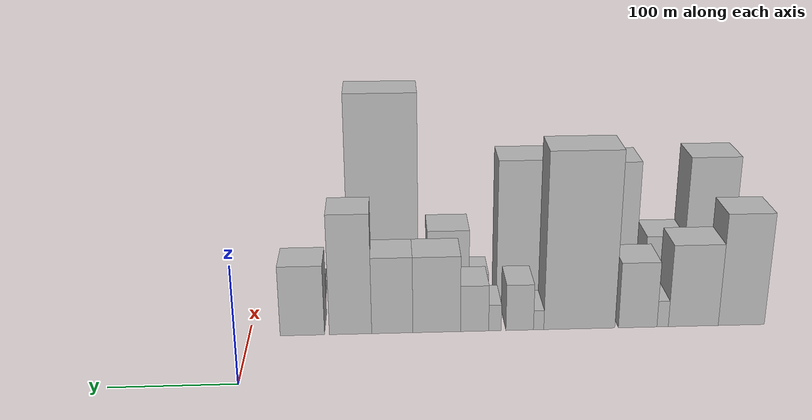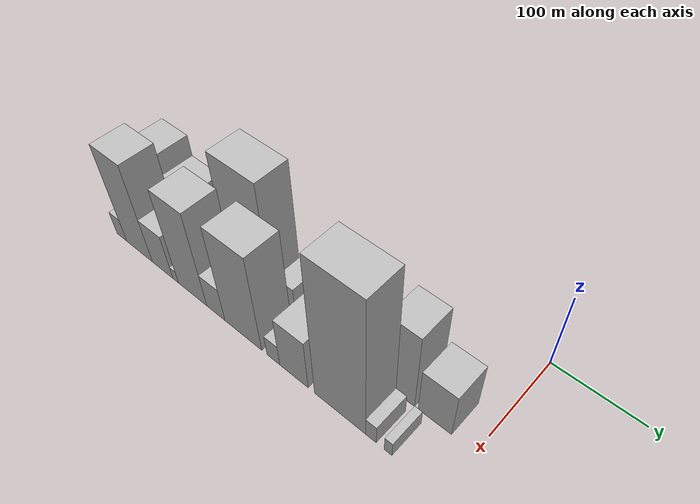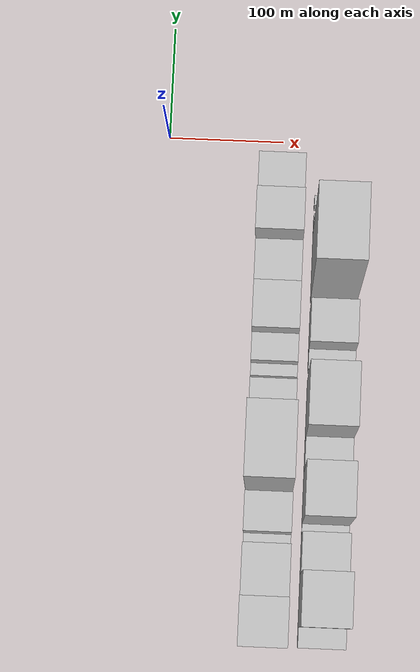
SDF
<sdf version="1.6">
 <world name="default">
  <model name="building_1">
   <static>1</static>
   <pose>100.0000 -417.9932 0 0.000000 0.000000 0.000000</pose>
   <link name="link">
    <pose>0 0 51.00 0 0 0</pose>
    <collision name="collision"><geometry><box><size>40.0000 40.0137 102.0000</size></box></geometry></collision>
    <visual name="visual">
     <cast_shadows>0</cast_shadows>
     <geometry><box><size>40.0000 40.0137 102.0000</size></box></geometry>
     <material>
      <script>
       <uri>model://HANNAS_wall/materials/scripts</uri>
       <uri>model://HANNAS_wall/materials/textures</uri>
       <name>vrc/HANNAS_wall</name>
      </script>
     </material>
    </visual>
   </link>
  </model>
  <model name="building_2">
   <static>1</static>
   <pose>100.0000 -376.3989 0 0.000000 0.000000 0.000000</pose>
   <link name="link">
    <pose>0 0 37.50 0 0 0</pose>
    <collision name="collision"><geometry><box><size>40.0000 43.1749 75.0000</size></box></geometry></collision>
    <visual name="visual">
     <cast_shadows>0</cast_shadows>
     <geometry><box><size>40.0000 43.1749 75.0000</size></box></geometry>
     <material>
      <script>
       <uri>model://HANNAS_wall/materials/scripts</uri>
       <uri>model://HANNAS_wall/materials/textures</uri>
       <name>vrc/HANNAS_wall</name>
      </script>
     </material>
    </visual>
   </link>
  </model>
  <model name="building_3">
   <static>1</static>
   <pose>100.0000 -349.9161 0 0.000000 0.000000 0.000000</pose>
   <link name="link">
    <pose>0 0 12.00 0 0 0</pose>
    <collision name="collision"><geometry><box><size>40.0000 9.7908 24.0000</size></box></geometry></collision>
    <visual name="visual">
     <cast_shadows>0</cast_shadows>
     <geometry><box><size>40.0000 9.7908 24.0000</size></box></geometry>
     <material>
      <script>
       <uri>model://HANNAS_wall/materials/scripts</uri>
       <uri>model://HANNAS_wall/materials/textures</uri>
       <name>vrc/HANNAS_wall</name>
      </script>
     </material>
    </visual>
   </link>
  </model>
  <model name="building_4">
   <static>1</static>
   <pose>100.0000 -328.4559 0 0.000000 0.000000 0.000000</pose>
   <link name="link">
    <pose>0 0 30.00 0 0 0</pose>
    <collision name="collision"><geometry><box><size>40.0000 33.1295 60.0000</size></box></geometry></collision>
    <visual name="visual">
     <cast_shadows>0</cast_shadows>
     <geometry><box><size>40.0000 33.1295 60.0000</size></box></geometry>
     <material>
      <script>
       <uri>model://HANNAS_wall/materials/scripts</uri>
       <uri>model://HANNAS_wall/materials/textures</uri>
       <name>vrc/HANNAS_wall</name>
      </script>
     </material>
    </visual>
   </link>
  </model>
  <model name="building_5">
   <static>1</static>
   <pose>100.0000 -278.4447 0 0.000000 0.000000 0.000000</pose>
   <link name="link">
    <pose>0 0 79.50 0 0 0</pose>
    <collision name="collision"><geometry><box><size>40.0000 60.8930 159.0000</size></box></geometry></collision>
    <visual name="visual">
     <cast_shadows>0</cast_shadows>
     <geometry><box><size>40.0000 60.8930 159.0000</size></box></geometry>
     <material>
      <script>
       <uri>model://HANNAS_wall/materials/scripts</uri>
       <uri>model://HANNAS_wall/materials/textures</uri>
       <name>vrc/HANNAS_wall</name>
      </script>
     </material>
    </visual>
   </link>
  </model>
  <model name="building_6">
   <static>1</static>
   <pose>100.0000 -243.5873 0 0.000000 0.000000 0.000000</pose>
   <link name="link">
    <pose>0 0 9.00 0 0 0</pose>
    <collision name="collision"><geometry><box><size>40.0000 8.8217 18.0000</size></box></geometry></collision>
    <visual name="visual">
     <cast_shadows>0</cast_shadows>
     <geometry><box><size>40.0000 8.8217 18.0000</size></box></geometry>
     <material>
      <script>
       <uri>model://HANNAS_wall/materials/scripts</uri>
       <uri>model://HANNAS_wall/materials/textures</uri>
       <name>vrc/HANNAS_wall</name>
      </script>
     </material>
    </visual>
   </link>
  </model>
  <model name="building_7">
   <static>1</static>
   <pose>100.0000 -227.4577 0 0.000000 0.000000 0.000000</pose>
   <link name="link">
    <pose>0 0 21.00 0 0 0</pose>
    <collision name="collision"><geometry><box><size>40.0000 23.4375 42.0000</size></box></geometry></collision>
    <visual name="visual">
     <cast_shadows>0</cast_shadows>
     <geometry><box><size>40.0000 23.4375 42.0000</size></box></geometry>
     <material>
      <script>
       <uri>model://HANNAS_wall/materials/scripts</uri>
       <uri>model://HANNAS_wall/materials/textures</uri>
       <name>vrc/HANNAS_wall</name>
      </script>
     </material>
    </visual>
   </link>
  </model>
  <model name="building_8">
   <static>1</static>
   <pose>100.0000 -206.4050 0 0.000000 0.000000 0.000000</pose>
   <link name="link">
    <pose>0 0 12.00 0 0 0</pose>
    <collision name="collision"><geometry><box><size>40.0000 10.6677 24.0000</size></box></geometry></collision>
    <visual name="visual">
     <cast_shadows>0</cast_shadows>
     <geometry><box><size>40.0000 10.6677 24.0000</size></box></geometry>
     <material>
      <script>
       <uri>model://HANNAS_wall/materials/scripts</uri>
       <uri>model://HANNAS_wall/materials/textures</uri>
       <name>vrc/HANNAS_wall</name>
      </script>
     </material>
    </visual>
   </link>
  </model>
  <model name="building_9">
   <static>1</static>
   <pose>100.0000 -189.1348 0 0.000000 0.000000 0.000000</pose>
   <link name="link">
    <pose>0 0 21.00 0 0 0</pose>
    <collision name="collision"><geometry><box><size>40.0000 23.8727 42.0000</size></box></geometry></collision>
    <visual name="visual">
     <cast_shadows>0</cast_shadows>
     <geometry><box><size>40.0000 23.8727 42.0000</size></box></geometry>
     <material>
      <script>
       <uri>model://HANNAS_wall/materials/scripts</uri>
       <uri>model://HANNAS_wall/materials/textures</uri>
       <name>vrc/HANNAS_wall</name>
      </script>
     </material>
    </visual>
   </link>
  </model>
  <model name="building_10">
   <static>1</static>
   <pose>100.0000 -157.0631 0 0.000000 0.000000 0.000000</pose>
   <link name="link">
    <pose>0 0 34.50 0 0 0</pose>
    <collision name="collision"><geometry><box><size>40.0000 40.2707 69.0000</size></box></geometry></collision>
    <visual name="visual">
     <cast_shadows>0</cast_shadows>
     <geometry><box><size>40.0000 40.2707 69.0000</size></box></geometry>
     <material>
      <script>
       <uri>model://HANNAS_wall/materials/scripts</uri>
       <uri>model://HANNAS_wall/materials/textures</uri>
       <name>vrc/HANNAS_wall</name>
      </script>
     </material>
    </visual>
   </link>
  </model>
  <model name="building_11">
   <static>1</static>
   <pose>100.0000 -119.5732 0 0.000000 0.000000 0.000000</pose>
   <link name="link">
    <pose>0 0 34.50 0 0 0</pose>
    <collision name="collision"><geometry><box><size>40.0000 34.7091 69.0000</size></box></geometry></collision>
    <visual name="visual">
     <cast_shadows>0</cast_shadows>
     <geometry><box><size>40.0000 34.7091 69.0000</size></box></geometry>
     <material>
      <script>
       <uri>model://HANNAS_wall/materials/scripts</uri>
       <uri>model://HANNAS_wall/materials/textures</uri>
       <name>vrc/HANNAS_wall</name>
      </script>
     </material>
    </visual>
   </link>
  </model>
  <model name="building_12">
   <static>1</static>
   <pose>100.0000 -84.4262 0 0.000000 0.000000 0.000000</pose>
   <link name="link">
    <pose>0 0 54.00 0 0 0</pose>
    <collision name="collision"><geometry><box><size>40.0000 35.5850 108.0000</size></box></geometry></collision>
    <visual name="visual">
     <cast_shadows>0</cast_shadows>
     <geometry><box><size>40.0000 35.5850 108.0000</size></box></geometry>
     <material>
      <script>
       <uri>model://HANNAS_wall/materials/scripts</uri>
       <uri>model://HANNAS_wall/materials/textures</uri>
       <name>vrc/HANNAS_wall</name>
      </script>
     </material>
    </visual>
   </link>
  </model>
  <model name="building_13">
   <static>1</static>
   <pose>100.0000 -44.0721 0 0.000000 0.000000 0.000000</pose>
   <link name="link">
    <pose>0 0 31.50 0 0 0</pose>
    <collision name="collision"><geometry><box><size>40.0000 37.1232 63.0000</size></box></geometry></collision>
    <visual name="visual">
     <cast_shadows>0</cast_shadows>
     <geometry><box><size>40.0000 37.1232 63.0000</size></box></geometry>
     <material>
      <script>
       <uri>model://HANNAS_wall/materials/scripts</uri>
       <uri>model://HANNAS_wall/materials/textures</uri>
       <name>vrc/HANNAS_wall</name>
      </script>
     </material>
    </visual>
   </link>
  </model>
  <model name="building_24">
   <static>1</static>
   <pose>149.0000 -429.4682 0 0.000000 0.000000 0.000000</pose>
   <link name="link">
    <pose>0 0 16.50 0 0 0</pose>
    <collision name="collision"><geometry><box><size>40.0000 17.0636 33.0000</size></box></geometry></collision>
    <visual name="visual">
     <cast_shadows>0</cast_shadows>
     <geometry><box><size>40.0000 17.0636 33.0000</size></box></geometry>
     <material>
      <script>
       <uri>model://HANNAS_wall/materials/scripts</uri>
       <uri>model://HANNAS_wall/materials/textures</uri>
       <name>vrc/HANNAS_wall</name>
      </script>
     </material>
    </visual>
   </link>
  </model>
  <model name="building_25">
   <static>1</static>
   <pose>149.0000 -399.0702 0 0.000000 0.000000 0.000000</pose>
   <link name="link">
    <pose>0 0 67.50 0 0 0</pose>
    <collision name="collision"><geometry><box><size>40.0000 43.7325 135.0000</size></box></geometry></collision>
    <visual name="visual">
     <cast_shadows>0</cast_shadows>
     <geometry><box><size>40.0000 43.7325 135.0000</size></box></geometry>
     <material>
      <script>
       <uri>model://HANNAS_wall/materials/scripts</uri>
       <uri>model://HANNAS_wall/materials/textures</uri>
       <name>vrc/HANNAS_wall</name>
      </script>
     </material>
    </visual>
   </link>
  </model>
  <model name="building_26">
   <static>1</static>
   <pose>149.0000 -360.4197 0 0.000000 0.000000 0.000000</pose>
   <link name="link">
    <pose>0 0 31.50 0 0 0</pose>
    <collision name="collision"><geometry><box><size>40.0000 33.5685 63.0000</size></box></geometry></collision>
    <visual name="visual">
     <cast_shadows>0</cast_shadows>
     <geometry><box><size>40.0000 33.5685 63.0000</size></box></geometry>
     <material>
      <script>
       <uri>model://HANNAS_wall/materials/scripts</uri>
       <uri>model://HANNAS_wall/materials/textures</uri>
       <name>vrc/HANNAS_wall</name>
      </script>
     </material>
    </visual>
   </link>
  </model>
  <model name="building_27">
   <static>1</static>
   <pose>149.0000 -339.3801 0 0.000000 0.000000 0.000000</pose>
   <link name="link">
    <pose>0 0 9.00 0 0 0</pose>
    <collision name="collision"><geometry><box><size>40.0000 8.5107 18.0000</size></box></geometry></collision>
    <visual name="visual">
     <cast_shadows>0</cast_shadows>
     <geometry><box><size>40.0000 8.5107 18.0000</size></box></geometry>
     <material>
      <script>
       <uri>model://HANNAS_wall/materials/scripts</uri>
       <uri>model://HANNAS_wall/materials/textures</uri>
       <name>vrc/HANNAS_wall</name>
      </script>
     </material>
    </visual>
   </link>
  </model>
  <model name="building_28">
   <static>1</static>
   <pose>149.0000 -313.0791 0 0.000000 0.000000 0.000000</pose>
   <link name="link">
    <pose>0 0 66.00 0 0 0</pose>
    <collision name="collision"><geometry><box><size>40.0000 44.0914 132.0000</size></box></geometry></collision>
    <visual name="visual">
     <cast_shadows>0</cast_shadows>
     <geometry><box><size>40.0000 44.0914 132.0000</size></box></geometry>
     <material>
      <script>
       <uri>model://HANNAS_wall/materials/scripts</uri>
       <uri>model://HANNAS_wall/materials/textures</uri>
       <name>vrc/HANNAS_wall</name>
      </script>
     </material>
    </visual>
   </link>
  </model>
  <model name="building_29">
   <static>1</static>
   <pose>149.0000 -277.5965 0 0.000000 0.000000 0.000000</pose>
   <link name="link">
    <pose>0 0 24.00 0 0 0</pose>
    <collision name="collision"><geometry><box><size>40.0000 26.8737 48.0000</size></box></geometry></collision>
    <visual name="visual">
     <cast_shadows>0</cast_shadows>
     <geometry><box><size>40.0000 26.8737 48.0000</size></box></geometry>
     <material>
      <script>
       <uri>model://HANNAS_wall/materials/scripts</uri>
       <uri>model://HANNAS_wall/materials/textures</uri>
       <name>vrc/HANNAS_wall</name>
      </script>
     </material>
    </visual>
   </link>
  </model>
  <model name="building_30">
   <static>1</static>
   <pose>149.0000 -238.1916 0 0.000000 0.000000 0.000000</pose>
   <link name="link">
    <pose>0 0 67.50 0 0 0</pose>
    <collision name="collision"><geometry><box><size>40.0000 51.9361 135.0000</size></box></geometry></collision>
    <visual name="visual">
     <cast_shadows>0</cast_shadows>
     <geometry><box><size>40.0000 51.9361 135.0000</size></box></geometry>
     <material>
      <script>
       <uri>model://HANNAS_wall/materials/scripts</uri>
       <uri>model://HANNAS_wall/materials/textures</uri>
       <name>vrc/HANNAS_wall</name>
      </script>
     </material>
    </visual>
   </link>
  </model>
  <model name="building_31">
   <static>1</static>
   <pose>149.0000 -196.5677 0 0.000000 0.000000 0.000000</pose>
   <link name="link">
    <pose>0 0 15.00 0 0 0</pose>
    <collision name="collision"><geometry><box><size>40.0000 17.3117 30.0000</size></box></geometry></collision>
    <visual name="visual">
     <cast_shadows>0</cast_shadows>
     <geometry><box><size>40.0000 17.3117 30.0000</size></box></geometry>
     <material>
      <script>
       <uri>model://HANNAS_wall/materials/scripts</uri>
       <uri>model://HANNAS_wall/materials/textures</uri>
       <name>vrc/HANNAS_wall</name>
      </script>
     </material>
    </visual>
   </link>
  </model>
  <model name="building_32">
   <static>1</static>
   <pose>149.0000 -169.5741 0 0.000000 0.000000 0.000000</pose>
   <link name="link">
    <pose>0 0 36.00 0 0 0</pose>
    <collision name="collision"><geometry><box><size>40.0000 36.6756 72.0000</size></box></geometry></collision>
    <visual name="visual">
     <cast_shadows>0</cast_shadows>
     <geometry><box><size>40.0000 36.6756 72.0000</size></box></geometry>
     <material>
      <script>
       <uri>model://HANNAS_wall/materials/scripts</uri>
       <uri>model://HANNAS_wall/materials/textures</uri>
       <name>vrc/HANNAS_wall</name>
      </script>
     </material>
    </visual>
   </link>
  </model>
  <model name="building_33">
   <static>1</static>
   <pose>149.0000 -112.5445 0 0.000000 0.000000 0.000000</pose>
   <link name="link">
    <pose>0 0 97.50 0 0 0</pose>
    <collision name="collision"><geometry><box><size>40.0000 61.3836 195.0000</size></box></geometry></collision>
    <visual name="visual">
     <cast_shadows>0</cast_shadows>
     <geometry><box><size>40.0000 61.3836 195.0000</size></box></geometry>
     <material>
      <script>
       <uri>model://HANNAS_wall/materials/scripts</uri>
       <uri>model://HANNAS_wall/materials/textures</uri>
       <name>vrc/HANNAS_wall</name>
      </script>
     </material>
    </visual>
   </link>
  </model>
  <model name="building_34">
   <static>1</static>
   <pose>149.0000 -75.7900 0 0.000000 0.000000 0.000000</pose>
   <link name="link">
    <pose>0 0 13.50 0 0 0</pose>
    <collision name="collision"><geometry><box><size>40.0000 12.1252 27.0000</size></box></geometry></collision>
    <visual name="visual">
     <cast_shadows>0</cast_shadows>
     <geometry><box><size>40.0000 12.1252 27.0000</size></box></geometry>
     <material>
      <script>
       <uri>model://HANNAS_wall/materials/scripts</uri>
       <uri>model://HANNAS_wall/materials/textures</uri>
       <name>vrc/HANNAS_wall</name>
      </script>
     </material>
    </visual>
   </link>
  </model>
  <model name="building_35">
   <static>1</static>
   <pose>149.0000 -56.3730 0 0.000000 0.000000 0.000000</pose>
   <link name="link">
    <pose>0 0 10.50 0 0 0</pose>
    <collision name="collision"><geometry><box><size>40.0000 8.7089 21.0000</size></box></geometry></collision>
    <visual name="visual">
     <cast_shadows>0</cast_shadows>
     <geometry><box><size>40.0000 8.7089 21.0000</size></box></geometry>
     <material>
      <script>
       <uri>model://HANNAS_wall/materials/scripts</uri>
       <uri>model://HANNAS_wall/materials/textures</uri>
       <name>vrc/HANNAS_wall</name>
      </script>
     </material>
    </visual>
   </link>
  </model>
 </world>
</sdf>
